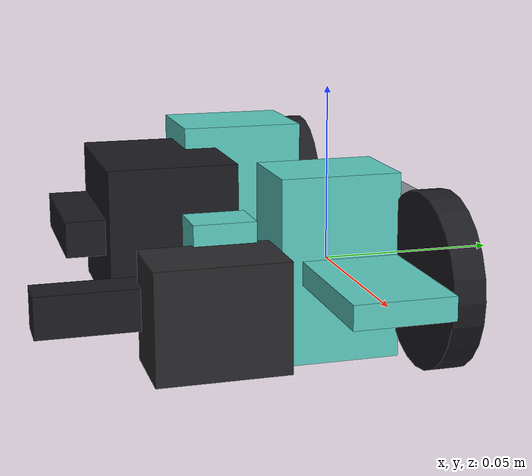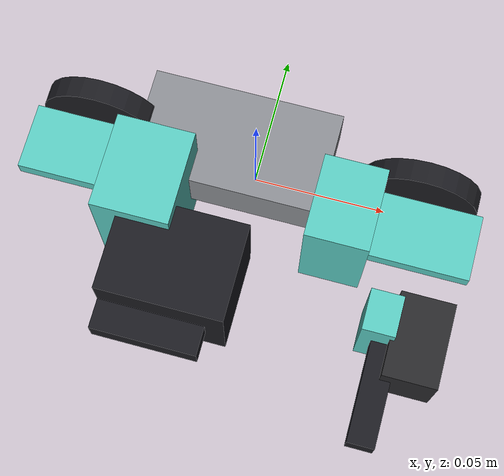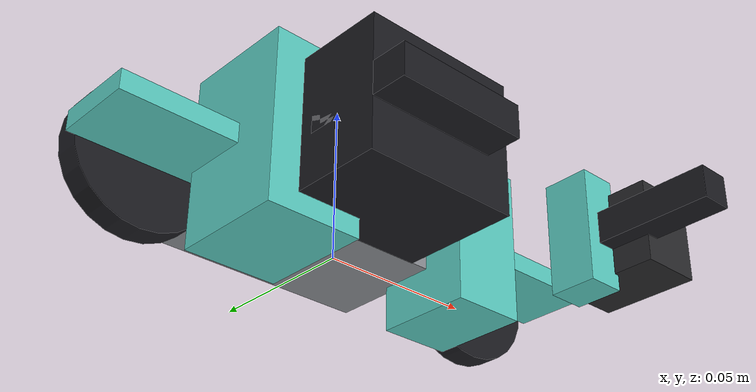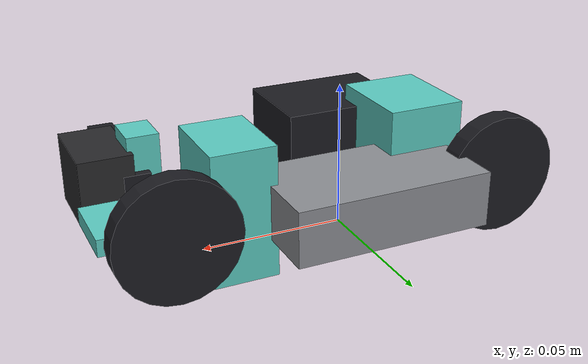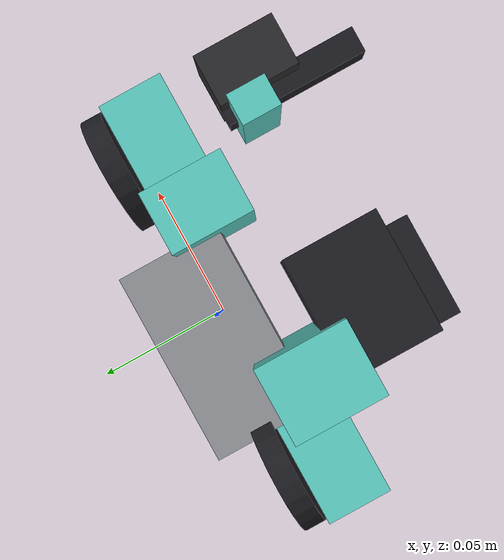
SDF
<?xml version="1.0"?>
<sdf version="1.7">
  <model name="ebike_toppled">
    <static>true</static>
    <link name="link">
<visual name="deck"><pose>-0.0090 0.0059 0.0100 0.0000 0.0000 0</pose><geometry><box><size>0.0720 0.0390 0.020</size></box></geometry><material><ambient>0.55 0.56 0.58 1</ambient><diffuse>0.55 0.56 0.58 1</diffuse></material></visual>
      <visual name="body_f"><pose>0.0360 -0.0118 0.0100 0.0000 0.0000 0</pose><geometry><box><size>0.0234 0.0310 0.048</size></box></geometry><material><ambient>0.36 0.80 0.76 1</ambient><diffuse>0.36 0.80 0.76 1</diffuse></material></visual>
      <visual name="body_r"><pose>-0.0360 -0.0190 0.0100 0.0000 0.0000 0</pose><geometry><box><size>0.0288 0.0350 0.052</size></box></geometry><material><ambient>0.36 0.80 0.76 1</ambient><diffuse>0.36 0.80 0.76 1</diffuse></material></visual>
      <visual name="seatbox"><pose>-0.0180 -0.0454 0.0100 0.0000 0.0000 0</pose><geometry><box><size>0.0468 0.0360 0.040</size></box></geometry><material><ambient>0.11 0.11 0.13 1</ambient><diffuse>0.11 0.11 0.13 1</diffuse></material></visual>
      <visual name="seat"><pose>-0.0216 -0.0574 0.0100 0.0000 0.0000 0</pose><geometry><box><size>0.0396 0.0340 0.010</size></box></geometry><material><ambient>0.11 0.11 0.13 1</ambient><diffuse>0.11 0.11 0.13 1</diffuse></material></visual>
      <visual name="stem"><pose>0.0576 -0.0454 0.0100 0.0000 0.0000 0</pose><geometry><box><size>0.012 0.0150 0.0360</size></box></geometry><material><ambient>0.36 0.80 0.76 1</ambient><diffuse>0.36 0.80 0.76 1</diffuse></material></visual>
      <visual name="bar"><pose>0.0612 -0.0622 0.0100 0.0000 0.0000 0</pose><geometry><box><size>0.010 0.0550 0.010</size></box></geometry><material><ambient>0.11 0.11 0.13 1</ambient><diffuse>0.11 0.11 0.13 1</diffuse></material></visual>
      <visual name="basket"><pose>0.0720 -0.0502 0.0100 0.0000 0.0000 0</pose><geometry><box><size>0.0198 0.0310 0.026</size></box></geometry><material><ambient>0.16 0.16 0.17 1</ambient><diffuse>0.16 0.16 0.17 1</diffuse></material></visual>
      <visual name="fender_f"><pose>0.0612 -0.0095 0.0100 0.0000 0.0000 0</pose><geometry><box><size>0.0484 0.0250 0.006</size></box></geometry><material><ambient>0.36 0.80 0.76 1</ambient><diffuse>0.36 0.80 0.76 1</diffuse></material></visual>
      <visual name="fender_r"><pose>-0.0612 -0.0095 0.0100 0.0000 0.0000 0</pose><geometry><box><size>0.0484 0.0250 0.006</size></box></geometry><material><ambient>0.36 0.80 0.76 1</ambient><diffuse>0.36 0.80 0.76 1</diffuse></material></visual>
      <visual name="wheel_f"><pose>0.0612 0.0070 0.0100 1.5708 0.0000 0</pose><geometry><cylinder><radius>0.0220</radius><length>0.0080</length></cylinder></geometry><material><ambient>0.11 0.11 0.13 1</ambient><diffuse>0.11 0.11 0.13 1</diffuse></material></visual>
      <collision name="wheel_f_c_c"><pose>0.0612 0.0070 0.0100 1.5708 0.0000 0</pose><geometry><cylinder><radius>0.0220</radius><length>0.0080</length></cylinder></geometry></collision>
      <visual name="wheel_r"><pose>-0.0612 0.0070 0.0100 1.5708 0.0000 0</pose><geometry><cylinder><radius>0.0220</radius><length>0.0080</length></cylinder></geometry><material><ambient>0.11 0.11 0.13 1</ambient><diffuse>0.11 0.11 0.13 1</diffuse></material></visual>
      <collision name="wheel_r_c_c"><pose>-0.0612 0.0070 0.0100 1.5708 0.0000 0</pose><geometry><cylinder><radius>0.0220</radius><length>0.0080</length></cylinder></geometry></collision>
    </link>
  </model>
</sdf>
